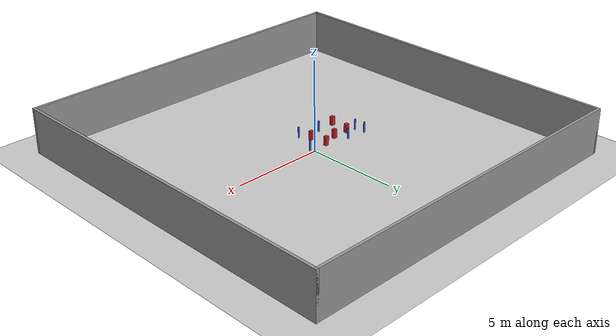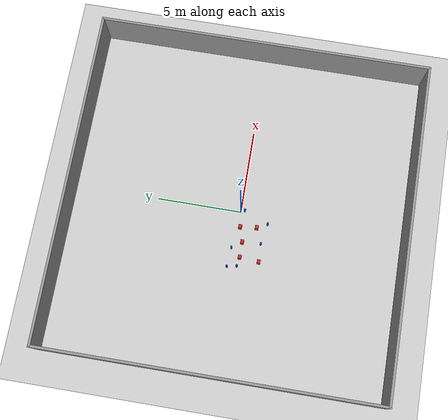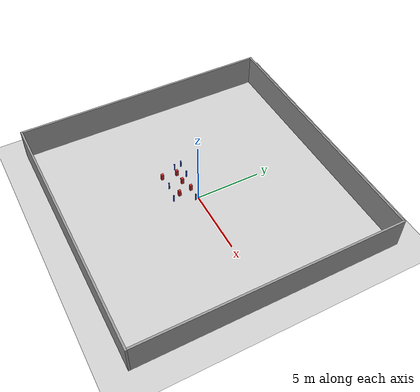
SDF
<sdf version="1.6">
 <world name="default">
  <model name="ground_plane">
   <static>1</static>
   <link name="link">
    <collision name="collision">
     <geometry><plane><normal>0 0 1</normal><size>100 100</size></plane></geometry>
     <surface><friction><ode><mu>100</mu><mu2>50</mu2></ode></friction></surface>
    </collision>
    <visual name="visual">
     <cast_shadows>0</cast_shadows>
     <geometry><plane><normal>0 0 1</normal><size>100 100</size></plane></geometry>
     <material>
      <ambient>1.0 1.0 1.0 1.0</ambient>
      <diffuse>0.8 0.8 0.8 1.0</diffuse>
      <specular>0.01 0.01 0.01 1.000000</specular>
     </material>
    </visual>
   </link>
  </model>
  <model name="NamedLocations">
   <static>true</static>
   <link name="DefaultStart"><pose>8.5 0 0 0 0 3.14</pose></link>
  </model>
  <model name="20x20_walls">
   <pose>0.044518 0.176112 0 0 -0 0</pose>
   <link name="Wall_1">
    <collision name="Wall_1_Collision">
     <geometry><box><size>20 0.15 2.5</size></box></geometry>
     <pose>0 0 1.25 0 -0 0</pose>
    </collision>
    <visual name="Wall_1_Visual">
     <pose>0 0 1.25 0 -0 0</pose>
     <geometry><box><size>20 0.15 2.5</size></box></geometry>
     <material>
      <script><uri>file://media/materials/scripts/gazebo.material</uri><name>Gazebo/Grey</name></script>
      <ambient>0.976471 0.992157 1 1</ambient>
     </material>
     <meta><layer>0</layer></meta>
    </visual>
    <pose>0 9.925 0 0 -0 0</pose>
   </link>
   <link name="Wall_3">
    <collision name="Wall_3_Collision">
     <geometry><box><size>20 0.15 2.5</size></box></geometry>
     <pose>0 0 1.25 0 -0 0</pose>
    </collision>
    <visual name="Wall_3_Visual">
     <pose>0 0 1.25 0 -0 0</pose>
     <geometry><box><size>20 0.15 2.5</size></box></geometry>
     <material>
      <script><uri>file://media/materials/scripts/gazebo.material</uri><name>Gazebo/Grey</name></script>
      <ambient>0.976471 0.992157 1 1</ambient>
     </material>
     <meta><layer>0</layer></meta>
    </visual>
    <pose>9.925 0 0 0 0 -1.5708</pose>
   </link>
   <link name="Wall_4">
    <collision name="Wall_4_Collision">
     <geometry><box><size>20 0.15 2.5</size></box></geometry>
     <pose>0 0 1.25 0 -0 0</pose>
    </collision>
    <visual name="Wall_4_Visual">
     <pose>0 0 1.25 0 -0 0</pose>
     <geometry><box><size>20 0.15 2.5</size></box></geometry>
     <material>
      <script><uri>file://media/materials/scripts/gazebo.material</uri><name>Gazebo/Grey</name></script>
      <ambient>0.976471 0.992157 1 1</ambient>
     </material>
     <meta><layer>0</layer></meta>
    </visual>
    <pose>0 -9.925 0 0 -0 3.14159</pose>
   </link>
   <link name="Wall_5">
    <collision name="Wall_5_Collision">
     <geometry><box><size>20 0.15 2.5</size></box></geometry>
     <pose>0 0 1.25 0 -0 0</pose>
    </collision>
    <visual name="Wall_5_Visual">
     <pose>0 0 1.25 0 -0 0</pose>
     <geometry><box><size>20 0.15 2.5</size></box></geometry>
     <material>
      <script><uri>file://media/materials/scripts/gazebo.material</uri><name>Gazebo/Grey</name></script>
      <ambient>0.976471 0.992157 1 1</ambient>
     </material>
     <meta><layer>0</layer></meta>
    </visual>
    <pose>-9.925 0 0 0 -0 1.5708</pose>
   </link>
   <static>1</static>
  </model>
  <model name="square_post_obstacle9">
   <static>true</static>
   <pose>-0.950290578173 -0.117729899493 1.91545236811e-07 -7.35059704564e-06 1.12565212e-07 2.39332434364e-05</pose>
   <link name="link">
    <pose>0 0 0.25 0 -0 0</pose>
    <inertial>
     <mass>100</mass>
     <inertia>
      <ixx>0.166667</ixx>
      <ixy>0</ixy>
      <ixz>0</ixz>
      <iyy>0.166667</iyy>
      <iyz>0</iyz>
      <izz>0.166667</izz>
     </inertia>
    </inertial>
    <collision name="collision"><geometry><box><size>.2 .2 .5</size></box></geometry></collision>
    <visual name="visual">
     <geometry><box><size>.2 .2 .5</size></box></geometry>
     <material>
      <script><name>Gazebo/Red</name><uri>file://media/materials/scripts/gazebo.material</uri></script>
     </material>
    </visual>
   </link>
  </model>
  <model name="pole_obstacle47">
   <static>true</static>
   <pose>0.0822864104935 -0.241739446556 7.38925637345e-09 -8.471706928e-08 1.24976765132e-08 -1.74513093012e-07</pose>
   <link name="link">
    <pose>0 0 0.3 0 -0 0</pose>
    <inertial>
     <mass>1</mass>
     <inertia><ixx>0.145833</ixx><ixy>0</ixy><ixz>0</ixz><iyy>0.145833</iyy><iyz>0</iyz><izz>0.125</izz></inertia>
    </inertial>
    <collision name="collision">
     <geometry><cylinder><radius>0.05</radius><length>.6</length></cylinder></geometry>
    </collision>
    <visual name="visual">
     <geometry><cylinder><radius>0.05</radius><length>.6</length></cylinder></geometry>
     <material>
      <script><name>Gazebo/Blue</name><uri>file://media/materials/scripts/gazebo.material</uri></script>
     </material>
    </visual>
   </link>
  </model>
  <model name="square_post_obstacle64">
   <static>true</static>
   <pose>-2.7587264969 -0.38735793425 1.91545236811e-07 -7.35059704564e-06 1.12565212e-07 2.39332434364e-05</pose>
   <link name="link">
    <pose>0 0 0.25 0 -0 0</pose>
    <inertial>
     <mass>100</mass>
     <inertia>
      <ixx>0.166667</ixx>
      <ixy>0</ixy>
      <ixz>0</ixz>
      <iyy>0.166667</iyy>
      <iyz>0</iyz>
      <izz>0.166667</izz>
     </inertia>
    </inertial>
    <collision name="collision"><geometry><box><size>.2 .2 .5</size></box></geometry></collision>
    <visual name="visual">
     <geometry><box><size>.2 .2 .5</size></box></geometry>
     <material>
      <script><name>Gazebo/Red</name><uri>file://media/materials/scripts/gazebo.material</uri></script>
     </material>
    </visual>
   </link>
  </model>
  <model name="pole_obstacle70">
   <static>true</static>
   <pose>-1.77735977837 -1.48738273804 7.38925637345e-09 -8.471706928e-08 1.24976765079e-08 -1.74513093017e-07</pose>
   <link name="link">
    <pose>0 0 0.3 0 -0 0</pose>
    <inertial>
     <mass>1</mass>
     <inertia><ixx>0.145833</ixx><ixy>0</ixy><ixz>0</ixz><iyy>0.145833</iyy><iyz>0</iyz><izz>0.125</izz></inertia>
    </inertial>
    <collision name="collision">
     <geometry><cylinder><radius>0.05</radius><length>.6</length></cylinder></geometry>
    </collision>
    <visual name="visual">
     <geometry><cylinder><radius>0.05</radius><length>.6</length></cylinder></geometry>
     <material>
      <script><name>Gazebo/Blue</name><uri>file://media/materials/scripts/gazebo.material</uri></script>
     </material>
    </visual>
   </link>
  </model>
  <model name="square_post_obstacle76">
   <static>true</static>
   <pose>-2.85892131777 -1.53526582445 1.91545236811e-07 -7.35059704564e-06 1.12565212e-07 2.39332434364e-05</pose>
   <link name="link">
    <pose>0 0 0.25 0 -0 0</pose>
    <inertial>
     <mass>100</mass>
     <inertia>
      <ixx>0.166667</ixx>
      <ixy>0</ixy>
      <ixz>0</ixz>
      <iyy>0.166667</iyy>
      <iyz>0</iyz>
      <izz>0.166667</izz>
     </inertia>
    </inertial>
    <collision name="collision"><geometry><box><size>.2 .2 .5</size></box></geometry></collision>
    <visual name="visual">
     <geometry><box><size>.2 .2 .5</size></box></geometry>
     <material>
      <script><name>Gazebo/Red</name><uri>file://media/materials/scripts/gazebo.material</uri></script>
     </material>
    </visual>
   </link>
  </model>
  <model name="pole_obstacle85">
   <static>true</static>
   <pose>-3.30812540201 -0.297309392076 7.38925637345e-09 -8.47170692793e-08 1.24976764479e-08 -1.74513093039e-07</pose>
   <link name="link">
    <pose>0 0 0.3 0 -0 0</pose>
    <inertial>
     <mass>1</mass>
     <inertia><ixx>0.145833</ixx><ixy>0</ixy><ixz>0</ixz><iyy>0.145833</iyy><iyz>0</iyz><izz>0.125</izz></inertia>
    </inertial>
    <collision name="collision">
     <geometry><cylinder><radius>0.05</radius><length>.6</length></cylinder></geometry>
    </collision>
    <visual name="visual">
     <geometry><cylinder><radius>0.05</radius><length>.6</length></cylinder></geometry>
     <material>
      <script><name>Gazebo/Blue</name><uri>file://media/materials/scripts/gazebo.material</uri></script>
     </material>
    </visual>
   </link>
  </model>
  <model name="square_post_obstacle93">
   <static>true</static>
   <pose>-0.841296802821 -1.09614409623 1.91545236811e-07 -7.35059704564e-06 1.12565212e-07 2.39332434364e-05</pose>
   <link name="link">
    <pose>0 0 0.25 0 -0 0</pose>
    <inertial>
     <mass>100</mass>
     <inertia>
      <ixx>0.166667</ixx>
      <ixy>0</ixy>
      <ixz>0</ixz>
      <iyy>0.166667</iyy>
      <iyz>0</iyz>
      <izz>0.166667</izz>
     </inertia>
    </inertial>
    <collision name="collision"><geometry><box><size>.2 .2 .5</size></box></geometry></collision>
    <visual name="visual">
     <geometry><box><size>.2 .2 .5</size></box></geometry>
     <material>
      <script><name>Gazebo/Red</name><uri>file://media/materials/scripts/gazebo.material</uri></script>
     </material>
    </visual>
   </link>
  </model>
  <model name="pole_obstacle134">
   <static>true</static>
   <pose>-0.531344333198 -1.70714998279 7.38925637345e-09 -8.471706928e-08 1.24976765092e-08 -1.74513093016e-07</pose>
   <link name="link">
    <pose>0 0 0.3 0 -0 0</pose>
    <inertial>
     <mass>1</mass>
     <inertia><ixx>0.145833</ixx><ixy>0</ixy><ixz>0</ixz><iyy>0.145833</iyy><iyz>0</iyz><izz>0.125</izz></inertia>
    </inertial>
    <collision name="collision">
     <geometry><cylinder><radius>0.05</radius><length>.6</length></cylinder></geometry>
    </collision>
    <visual name="visual">
     <geometry><cylinder><radius>0.05</radius><length>.6</length></cylinder></geometry>
     <material>
      <script><name>Gazebo/Blue</name><uri>file://media/materials/scripts/gazebo.material</uri></script>
     </material>
    </visual>
   </link>
  </model>
  <model name="square_post_obstacle151">
   <static>true</static>
   <pose>-1.83662413128 -0.38633923437 1.91545236811e-07 -7.35059704564e-06 1.12565212e-07 2.39332434364e-05</pose>
   <link name="link">
    <pose>0 0 0.25 0 -0 0</pose>
    <inertial>
     <mass>100</mass>
     <inertia>
      <ixx>0.166667</ixx>
      <ixy>0</ixy>
      <ixz>0</ixz>
      <iyy>0.166667</iyy>
      <iyz>0</iyz>
      <izz>0.166667</izz>
     </inertia>
    </inertial>
    <collision name="collision"><geometry><box><size>.2 .2 .5</size></box></geometry></collision>
    <visual name="visual">
     <geometry><box><size>.2 .2 .5</size></box></geometry>
     <material>
      <script><name>Gazebo/Red</name><uri>file://media/materials/scripts/gazebo.material</uri></script>
     </material>
    </visual>
   </link>
  </model>
  <model name="pole_obstacle183">
   <static>true</static>
   <pose>-3.41682368382 0.276478437153 7.38925637345e-09 -8.471706928e-08 1.24976765126e-08 -1.74513093015e-07</pose>
   <link name="link">
    <pose>0 0 0.3 0 -0 0</pose>
    <inertial>
     <mass>1</mass>
     <inertia><ixx>0.145833</ixx><ixy>0</ixy><ixz>0</ixz><iyy>0.145833</iyy><iyz>0</iyz><izz>0.125</izz></inertia>
    </inertial>
    <collision name="collision">
     <geometry><cylinder><radius>0.05</radius><length>.6</length></cylinder></geometry>
    </collision>
    <visual name="visual">
     <geometry><cylinder><radius>0.05</radius><length>.6</length></cylinder></geometry>
     <material>
      <script><name>Gazebo/Blue</name><uri>file://media/materials/scripts/gazebo.material</uri></script>
     </material>
    </visual>
   </link>
  </model>
  <model name="pole_obstacle185">
   <static>true</static>
   <pose>-2.27748575342 0.189621440817 7.38925637345e-09 -8.47170692801e-08 1.24976765195e-08 -1.74513093011e-07</pose>
   <link name="link">
    <pose>0 0 0.3 0 -0 0</pose>
    <inertial>
     <mass>1</mass>
     <inertia><ixx>0.145833</ixx><ixy>0</ixy><ixz>0</ixz><iyy>0.145833</iyy><iyz>0</iyz><izz>0.125</izz></inertia>
    </inertial>
    <collision name="collision">
     <geometry><cylinder><radius>0.05</radius><length>.6</length></cylinder></geometry>
    </collision>
    <visual name="visual">
     <geometry><cylinder><radius>0.05</radius><length>.6</length></cylinder></geometry>
     <material>
      <script><name>Gazebo/Blue</name><uri>file://media/materials/scripts/gazebo.material</uri></script>
     </material>
    </visual>
   </link>
  </model>
 </world>
</sdf>
